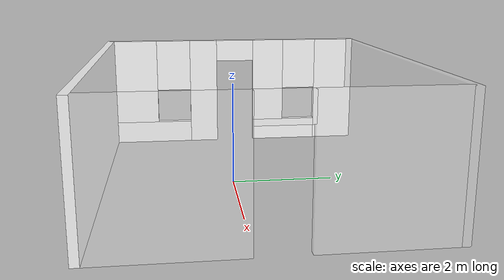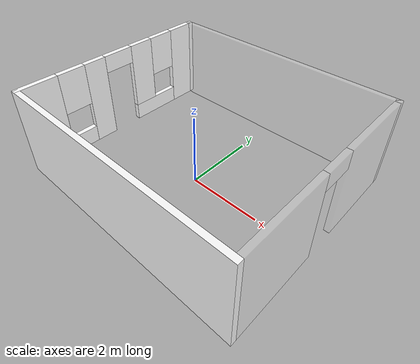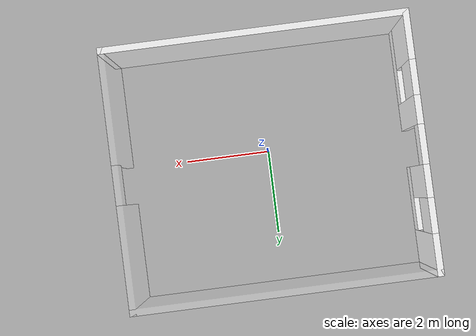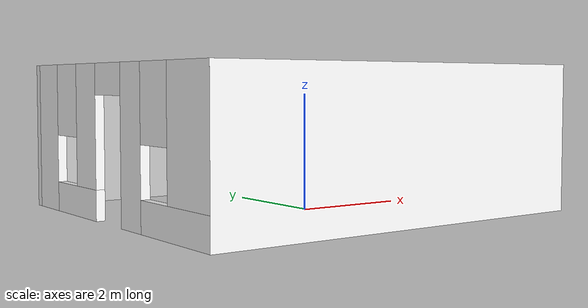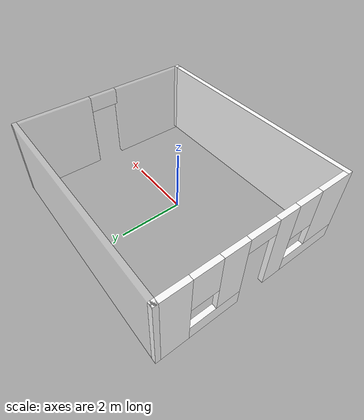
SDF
<?xml version='1.0'?>
<sdf version='1.7'>
  <model name='room'>
    <link name='Wall_11'>
      <pose>0 3.24692 0 0 -0 0</pose>
      <self_collide>0</self_collide>
      <enable_wind>0</enable_wind>
      <kinematic>0</kinematic>
      <gravity>1</gravity>
      <inertial>
        <mass>1</mass>
        <pose>0 0 0 0 -0 0</pose>
        <inertia>
          <ixx>1</ixx>
          <ixy>0</ixy>
          <ixz>0</ixz>
          <iyy>1</iyy>
          <iyz>0</iyz>
          <izz>1</izz>
        </inertia>
      </inertial>
      <visual name='Wall_11_Visual'>
        <pose>0 0 1.25 0 -0 0</pose>
        <geometry>
          <box>
            <size>7 0.15 2.5</size>
          </box>
        </geometry>
        <material>
          <script>
            <uri>model://room/materials/scripts</uri>
            <uri>model://room/materials/textures</uri>
            <name>testing/material</name>
          </script>
          <ambient>1 1 1 1</ambient>
          <shader type='pixel'>
            <normal_map>__default__</normal_map>
          </shader>
          <diffuse>1 1 1 1</diffuse>
          <specular>0 0 0 1</specular>
          <emissive>0 0 0 1</emissive>
        </material>
        <meta>
          <layer>0</layer>
        </meta>
        <transparency>0.7</transparency>
        <cast_shadows>1</cast_shadows>
      </visual>
      <collision name='Wall_11_Collision'>
        <laser_retro>0</laser_retro>
        <max_contacts>10</max_contacts>
        <pose>0 0 1.25 0 -0 0</pose>
        <geometry>
          <box>
            <size>7 0.15 2.5</size>
          </box>
        </geometry>
        <surface>
          <friction>
            <ode>
              <mu>1</mu>
              <mu2>1</mu2>
              <fdir1>0 0 0</fdir1>
              <slip1>0</slip1>
              <slip2>0</slip2>
            </ode>
            <torsional>
              <coefficient>1</coefficient>
              <patch_radius>0</patch_radius>
              <surface_radius>0</surface_radius>
              <use_patch_radius>1</use_patch_radius>
              <ode>
                <slip>0</slip>
              </ode>
            </torsional>
          </friction>
          <bounce>
            <restitution_coefficient>0</restitution_coefficient>
            <threshold>1e+06</threshold>
          </bounce>
          <contact>
            <collide_without_contact>0</collide_without_contact>
            <collide_without_contact_bitmask>1</collide_without_contact_bitmask>
            <collide_bitmask>1</collide_bitmask>
            <ode>
              <soft_cfm>0</soft_cfm>
              <soft_erp>0.2</soft_erp>
              <kp>1e+13</kp>
              <kd>1</kd>
              <max_vel>0.01</max_vel>
              <min_depth>0</min_depth>
            </ode>
            <bullet>
              <split_impulse>1</split_impulse>
              <split_impulse_penetration_threshold>-0.01</split_impulse_penetration_threshold>
              <soft_cfm>0</soft_cfm>
              <soft_erp>0.2</soft_erp>
              <kp>1e+13</kp>
              <kd>1</kd>
            </bullet>
          </contact>
        </surface>
      </collision>
    </link>
    <link name='Wall_5'>
      <pose>-3.425 0.321923 0 0 0 -1.5708</pose>
      <self_collide>0</self_collide>
      <enable_wind>0</enable_wind>
      <kinematic>0</kinematic>
      <visual name='Wall_5_Visual_0'>
        <pose>-2.52329 0 1.25 0 -0 0</pose>
        <geometry>
          <box>
            <size>0.953415 0.15 2.5</size>
          </box>
        </geometry>
        <material>
          <script>
            <uri>model://room/materials/scripts</uri>
            <uri>model://room/materials/textures</uri>
            <name>testing/material</name>
          </script>
          <ambient>1 1 1 1</ambient>
          <shader type='pixel'/>
        </material>
        <meta>
          <layer>0</layer>
        </meta>
        <transparency>0</transparency>
        <cast_shadows>1</cast_shadows>
      </visual>
      <visual name='Wall_5_Visual_1'>
        <pose>0.726172 0 1.25 0 -0 0</pose>
        <geometry>
          <box>
            <size>0.653489 0.15 2.5</size>
          </box>
        </geometry>
        <material>
          <script>
            <uri>model://room/materials/scripts</uri>
            <uri>model://room/materials/textures</uri>
            <name>testing/material</name>
          </script>
          <ambient>1 1 1 1</ambient>
          <shader type='pixel'/>
        </material>
        <meta>
          <layer>0</layer>
        </meta>
        <transparency>0</transparency>
        <cast_shadows>1</cast_shadows>
      </visual>
      <visual name='Wall_5_Visual_2'>
        <pose>-1.27358 0 0.25 0 -0 0</pose>
        <geometry>
          <box>
            <size>1.54601 0.15 0.5</size>
          </box>
        </geometry>
        <material>
          <script>
            <uri>model://room/materials/scripts</uri>
            <uri>model://room/materials/textures</uri>
            <name>testing/material</name>
          </script>
          <ambient>1 1 1 1</ambient>
          <shader type='pixel'/>
        </material>
        <meta>
          <layer>0</layer>
        </meta>
        <transparency>0</transparency>
        <cast_shadows>1</cast_shadows>
      </visual>
      <visual name='Wall_5_Visual_3'>
        <pose>2.02646 0 0.25 0 -0 0</pose>
        <geometry>
          <box>
            <size>1.94708 0.15 0.5</size>
          </box>
        </geometry>
        <material>
          <script>
            <uri>model://room/materials/scripts</uri>
            <uri>model://room/materials/textures</uri>
            <name>testing/material</name>
          </script>
          <ambient>1 1 1 1</ambient>
          <shader type='pixel'/>
        </material>
        <meta>
          <layer>0</layer>
        </meta>
        <transparency>0</transparency>
        <cast_shadows>1</cast_shadows>
      </visual>
      <visual name='Wall_5_Visual_4'>
        <pose>-0.873579 0 1.5 0 -0 0</pose>
        <geometry>
          <box>
            <size>0.746012 0.15 2</size>
          </box>
        </geometry>
        <material>
          <script>
            <uri>model://room/materials/scripts</uri>
            <uri>model://room/materials/textures</uri>
            <name>testing/material</name>
          </script>
          <ambient>1 1 1 1</ambient>
          <shader type='pixel'/>
        </material>
        <meta>
          <layer>0</layer>
        </meta>
        <transparency>0</transparency>
        <cast_shadows>1</cast_shadows>
      </visual>
      <visual name='Wall_5_Visual_5'>
        <pose>-0.873579 0 1.5 0 -0 0</pose>
        <geometry>
          <box>
            <size>0.746012 0.15 2</size>
          </box>
        </geometry>
        <material>
          <script>
            <uri>model://room/materials/scripts</uri>
            <uri>model://room/materials/textures</uri>
            <name>testing/material</name>
          </script>
          <ambient>1 1 1 1</ambient>
          <shader type='pixel'/>
        </material>
        <meta>
          <layer>0</layer>
        </meta>
        <transparency>0</transparency>
        <cast_shadows>1</cast_shadows>
      </visual>
      <visual name='Wall_5_Visual_6'>
        <pose>2.42646 0 1.5 0 -0 0</pose>
        <geometry>
          <box>
            <size>1.14708 0.15 2</size>
          </box>
        </geometry>
        <material>
          <script>
            <uri>model://room/materials/scripts</uri>
            <uri>model://room/materials/textures</uri>
            <name>testing/material</name>
          </script>
          <ambient>1 1 1 1</ambient>
          <shader type='pixel'/>
        </material>
        <meta>
          <layer>0</layer>
        </meta>
        <transparency>0</transparency>
        <cast_shadows>1</cast_shadows>
      </visual>
      <visual name='Wall_5_Visual_7'>
        <pose>-1.64658 0 1.9 0 -0 0</pose>
        <geometry>
          <box>
            <size>0.8 0.15 1.2</size>
          </box>
        </geometry>
        <material>
          <script>
            <uri>model://room/materials/scripts</uri>
            <uri>model://room/materials/textures</uri>
            <name>testing/material</name>
          </script>
          <ambient>1 1 1 1</ambient>
          <shader type='pixel'/>
        </material>
        <meta>
          <layer>0</layer>
        </meta>
        <transparency>0</transparency>
        <cast_shadows>1</cast_shadows>
      </visual>
      <visual name='Wall_5_Visual_8'>
        <pose>1.45292 0 1.9 0 -0 0</pose>
        <geometry>
          <box>
            <size>0.8 0.15 1.2</size>
          </box>
        </geometry>
        <material>
          <script>
            <uri>model://room/materials/scripts</uri>
            <uri>model://room/materials/textures</uri>
            <name>testing/material</name>
          </script>
          <ambient>1 1 1 1</ambient>
          <shader type='pixel'/>
        </material>
        <meta>
          <layer>0</layer>
        </meta>
        <transparency>0</transparency>
        <cast_shadows>1</cast_shadows>
      </visual>
      <visual name='Wall_5_Visual_9'>
        <pose>-0.050573 0 2.25 0 -0 0</pose>
        <geometry>
          <box>
            <size>0.9 0.15 0.5</size>
          </box>
        </geometry>
        <material>
          <script>
            <uri>model://room/materials/scripts</uri>
            <uri>model://room/materials/textures</uri>
            <name>testing/material</name>
          </script>
          <ambient>1 1 1 1</ambient>
          <shader type='pixel'/>
        </material>
        <meta>
          <layer>0</layer>
        </meta>
        <transparency>0</transparency>
        <cast_shadows>1</cast_shadows>
      </visual>
      <visual name='Wall_5_Visual_10'>
        <pose>-0.050573 0 2.25 0 -0 0</pose>
        <geometry>
          <box>
            <size>0.9 0.15 0.5</size>
          </box>
        </geometry>
        <material>
          <script>
            <uri>model://room/materials/scripts</uri>
            <uri>model://room/materials/textures</uri>
            <name>testing/material</name>
          </script>
          <ambient>1 1 1 1</ambient>
          <shader type='pixel'/>
        </material>
        <meta>
          <layer>0</layer>
        </meta>
        <transparency>0</transparency>
        <cast_shadows>1</cast_shadows>
      </visual>
      <collision name='Wall_5_Collision_0'>
        <laser_retro>0</laser_retro>
        <max_contacts>10</max_contacts>
        <pose>-2.52329 0 1.25 0 -0 0</pose>
        <geometry>
          <box>
            <size>0.953415 0.15 2.5</size>
          </box>
        </geometry>
        <surface>
          <friction>
            <ode>
              <mu>1</mu>
              <mu2>1</mu2>
              <fdir1>0 0 0</fdir1>
              <slip1>0</slip1>
              <slip2>0</slip2>
            </ode>
            <torsional>
              <coefficient>1</coefficient>
              <patch_radius>0</patch_radius>
              <surface_radius>0</surface_radius>
              <use_patch_radius>1</use_patch_radius>
              <ode>
                <slip>0</slip>
              </ode>
            </torsional>
          </friction>
          <bounce>
            <restitution_coefficient>0</restitution_coefficient>
            <threshold>1e+06</threshold>
          </bounce>
          <contact>
            <collide_without_contact>0</collide_without_contact>
            <collide_without_contact_bitmask>1</collide_without_contact_bitmask>
            <collide_bitmask>1</collide_bitmask>
            <ode>
              <soft_cfm>0</soft_cfm>
              <soft_erp>0.2</soft_erp>
              <kp>1e+13</kp>
              <kd>1</kd>
              <max_vel>0.01</max_vel>
              <min_depth>0</min_depth>
            </ode>
            <bullet>
              <split_impulse>1</split_impulse>
              <split_impulse_penetration_threshold>-0.01</split_impulse_penetration_threshold>
              <soft_cfm>0</soft_cfm>
              <soft_erp>0.2</soft_erp>
              <kp>1e+13</kp>
              <kd>1</kd>
            </bullet>
          </contact>
        </surface>
      </collision>
      <collision name='Wall_5_Collision_1'>
        <laser_retro>0</laser_retro>
        <max_contacts>10</max_contacts>
        <pose>0.726172 0 1.25 0 -0 0</pose>
        <geometry>
          <box>
            <size>0.653489 0.15 2.5</size>
          </box>
        </geometry>
        <surface>
          <friction>
            <ode>
              <mu>1</mu>
              <mu2>1</mu2>
              <fdir1>0 0 0</fdir1>
              <slip1>0</slip1>
              <slip2>0</slip2>
            </ode>
            <torsional>
              <coefficient>1</coefficient>
              <patch_radius>0</patch_radius>
              <surface_radius>0</surface_radius>
              <use_patch_radius>1</use_patch_radius>
              <ode>
                <slip>0</slip>
              </ode>
            </torsional>
          </friction>
          <bounce>
            <restitution_coefficient>0</restitution_coefficient>
            <threshold>1e+06</threshold>
          </bounce>
          <contact>
            <collide_without_contact>0</collide_without_contact>
            <collide_without_contact_bitmask>1</collide_without_contact_bitmask>
            <collide_bitmask>1</collide_bitmask>
            <ode>
              <soft_cfm>0</soft_cfm>
              <soft_erp>0.2</soft_erp>
              <kp>1e+13</kp>
              <kd>1</kd>
              <max_vel>0.01</max_vel>
              <min_depth>0</min_depth>
            </ode>
            <bullet>
              <split_impulse>1</split_impulse>
              <split_impulse_penetration_threshold>-0.01</split_impulse_penetration_threshold>
              <soft_cfm>0</soft_cfm>
              <soft_erp>0.2</soft_erp>
              <kp>1e+13</kp>
              <kd>1</kd>
            </bullet>
          </contact>
        </surface>
      </collision>
      <collision name='Wall_5_Collision_2'>
        <laser_retro>0</laser_retro>
        <max_contacts>10</max_contacts>
        <pose>-1.27358 0 0.25 0 -0 0</pose>
        <geometry>
          <box>
            <size>1.54601 0.15 0.5</size>
          </box>
        </geometry>
        <surface>
          <friction>
            <ode>
              <mu>1</mu>
              <mu2>1</mu2>
              <fdir1>0 0 0</fdir1>
              <slip1>0</slip1>
              <slip2>0</slip2>
            </ode>
            <torsional>
              <coefficient>1</coefficient>
              <patch_radius>0</patch_radius>
              <surface_radius>0</surface_radius>
              <use_patch_radius>1</use_patch_radius>
              <ode>
                <slip>0</slip>
              </ode>
            </torsional>
          </friction>
          <bounce>
            <restitution_coefficient>0</restitution_coefficient>
            <threshold>1e+06</threshold>
          </bounce>
          <contact>
            <collide_without_contact>0</collide_without_contact>
            <collide_without_contact_bitmask>1</collide_without_contact_bitmask>
            <collide_bitmask>1</collide_bitmask>
            <ode>
              <soft_cfm>0</soft_cfm>
              <soft_erp>0.2</soft_erp>
              <kp>1e+13</kp>
              <kd>1</kd>
              <max_vel>0.01</max_vel>
              <min_depth>0</min_depth>
            </ode>
            <bullet>
              <split_impulse>1</split_impulse>
              <split_impulse_penetration_threshold>-0.01</split_impulse_penetration_threshold>
              <soft_cfm>0</soft_cfm>
              <soft_erp>0.2</soft_erp>
              <kp>1e+13</kp>
              <kd>1</kd>
            </bullet>
          </contact>
        </surface>
      </collision>
      <collision name='Wall_5_Collision_3'>
        <laser_retro>0</laser_retro>
        <max_contacts>10</max_contacts>
        <pose>2.02646 0 0.25 0 -0 0</pose>
        <geometry>
          <box>
            <size>1.94708 0.15 0.5</size>
          </box>
        </geometry>
        <surface>
          <friction>
            <ode>
              <mu>1</mu>
              <mu2>1</mu2>
              <fdir1>0 0 0</fdir1>
              <slip1>0</slip1>
              <slip2>0</slip2>
            </ode>
            <torsional>
              <coefficient>1</coefficient>
              <patch_radius>0</patch_radius>
              <surface_radius>0</surface_radius>
              <use_patch_radius>1</use_patch_radius>
              <ode>
                <slip>0</slip>
              </ode>
            </torsional>
          </friction>
          <bounce>
            <restitution_coefficient>0</restitution_coefficient>
            <threshold>1e+06</threshold>
          </bounce>
          <contact>
            <collide_without_contact>0</collide_without_contact>
            <collide_without_contact_bitmask>1</collide_without_contact_bitmask>
            <collide_bitmask>1</collide_bitmask>
            <ode>
              <soft_cfm>0</soft_cfm>
              <soft_erp>0.2</soft_erp>
              <kp>1e+13</kp>
              <kd>1</kd>
              <max_vel>0.01</max_vel>
              <min_depth>0</min_depth>
            </ode>
            <bullet>
              <split_impulse>1</split_impulse>
              <split_impulse_penetration_threshold>-0.01</split_impulse_penetration_threshold>
              <soft_cfm>0</soft_cfm>
              <soft_erp>0.2</soft_erp>
              <kp>1e+13</kp>
              <kd>1</kd>
            </bullet>
          </contact>
        </surface>
      </collision>
      <collision name='Wall_5_Collision_4'>
        <laser_retro>0</laser_retro>
        <max_contacts>10</max_contacts>
        <pose>-0.873579 0 1.5 0 -0 0</pose>
        <geometry>
          <box>
            <size>0.746012 0.15 2</size>
          </box>
        </geometry>
        <surface>
          <friction>
            <ode>
              <mu>1</mu>
              <mu2>1</mu2>
              <fdir1>0 0 0</fdir1>
              <slip1>0</slip1>
              <slip2>0</slip2>
            </ode>
            <torsional>
              <coefficient>1</coefficient>
              <patch_radius>0</patch_radius>
              <surface_radius>0</surface_radius>
              <use_patch_radius>1</use_patch_radius>
              <ode>
                <slip>0</slip>
              </ode>
            </torsional>
          </friction>
          <bounce>
            <restitution_coefficient>0</restitution_coefficient>
            <threshold>1e+06</threshold>
          </bounce>
          <contact>
            <collide_without_contact>0</collide_without_contact>
            <collide_without_contact_bitmask>1</collide_without_contact_bitmask>
            <collide_bitmask>1</collide_bitmask>
            <ode>
              <soft_cfm>0</soft_cfm>
              <soft_erp>0.2</soft_erp>
              <kp>1e+13</kp>
              <kd>1</kd>
              <max_vel>0.01</max_vel>
              <min_depth>0</min_depth>
            </ode>
            <bullet>
              <split_impulse>1</split_impulse>
              <split_impulse_penetration_threshold>-0.01</split_impulse_penetration_threshold>
              <soft_cfm>0</soft_cfm>
              <soft_erp>0.2</soft_erp>
              <kp>1e+13</kp>
              <kd>1</kd>
            </bullet>
          </contact>
        </surface>
      </collision>
      <collision name='Wall_5_Collision_5'>
        <laser_retro>0</laser_retro>
        <max_contacts>10</max_contacts>
        <pose>-0.873579 0 1.5 0 -0 0</pose>
        <geometry>
          <box>
            <size>0.746012 0.15 2</size>
          </box>
        </geometry>
        <surface>
          <friction>
            <ode>
              <mu>1</mu>
              <mu2>1</mu2>
              <fdir1>0 0 0</fdir1>
              <slip1>0</slip1>
              <slip2>0</slip2>
            </ode>
            <torsional>
              <coefficient>1</coefficient>
              <patch_radius>0</patch_radius>
              <surface_radius>0</surface_radius>
              <use_patch_radius>1</use_patch_radius>
              <ode>
                <slip>0</slip>
              </ode>
            </torsional>
          </friction>
          <bounce>
            <restitution_coefficient>0</restitution_coefficient>
            <threshold>1e+06</threshold>
          </bounce>
          <contact>
            <collide_without_contact>0</collide_without_contact>
            <collide_without_contact_bitmask>1</collide_without_contact_bitmask>
            <collide_bitmask>1</collide_bitmask>
            <ode>
              <soft_cfm>0</soft_cfm>
              <soft_erp>0.2</soft_erp>
              <kp>1e+13</kp>
              <kd>1</kd>
              <max_vel>0.01</max_vel>
              <min_depth>0</min_depth>
            </ode>
            <bullet>
              <split_impulse>1</split_impulse>
              <split_impulse_penetration_threshold>-0.01</split_impulse_penetration_threshold>
              <soft_cfm>0</soft_cfm>
              <soft_erp>0.2</soft_erp>
              <kp>1e+13</kp>
              <kd>1</kd>
            </bullet>
          </contact>
        </surface>
      </collision>
      <collision name='Wall_5_Collision_6'>
        <laser_retro>0</laser_retro>
        <max_contacts>10</max_contacts>
        <pose>2.42646 0 1.5 0 -0 0</pose>
        <geometry>
          <box>
            <size>1.14708 0.15 2</size>
          </box>
        </geometry>
        <surface>
          <friction>
            <ode>
              <mu>1</mu>
              <mu2>1</mu2>
              <fdir1>0 0 0</fdir1>
              <slip1>0</slip1>
              <slip2>0</slip2>
            </ode>
            <torsional>
              <coefficient>1</coefficient>
              <patch_radius>0</patch_radius>
              <surface_radius>0</surface_radius>
              <use_patch_radius>1</use_patch_radius>
              <ode>
                <slip>0</slip>
              </ode>
            </torsional>
          </friction>
          <bounce>
            <restitution_coefficient>0</restitution_coefficient>
            <threshold>1e+06</threshold>
          </bounce>
          <contact>
            <collide_without_contact>0</collide_without_contact>
            <collide_without_contact_bitmask>1</collide_without_contact_bitmask>
            <collide_bitmask>1</collide_bitmask>
            <ode>
              <soft_cfm>0</soft_cfm>
              <soft_erp>0.2</soft_erp>
              <kp>1e+13</kp>
              <kd>1</kd>
              <max_vel>0.01</max_vel>
              <min_depth>0</min_depth>
            </ode>
            <bullet>
              <split_impulse>1</split_impulse>
              <split_impulse_penetration_threshold>-0.01</split_impulse_penetration_threshold>
              <soft_cfm>0</soft_cfm>
              <soft_erp>0.2</soft_erp>
              <kp>1e+13</kp>
              <kd>1</kd>
            </bullet>
          </contact>
        </surface>
      </collision>
      <collision name='Wall_5_Collision_7'>
        <laser_retro>0</laser_retro>
        <max_contacts>10</max_contacts>
        <pose>-1.64658 0 1.9 0 -0 0</pose>
        <geometry>
          <box>
            <size>0.8 0.15 1.2</size>
          </box>
        </geometry>
        <surface>
          <friction>
            <ode>
              <mu>1</mu>
              <mu2>1</mu2>
              <fdir1>0 0 0</fdir1>
              <slip1>0</slip1>
              <slip2>0</slip2>
            </ode>
            <torsional>
              <coefficient>1</coefficient>
              <patch_radius>0</patch_radius>
              <surface_radius>0</surface_radius>
              <use_patch_radius>1</use_patch_radius>
              <ode>
                <slip>0</slip>
              </ode>
            </torsional>
          </friction>
          <bounce>
            <restitution_coefficient>0</restitution_coefficient>
            <threshold>1e+06</threshold>
          </bounce>
          <contact>
            <collide_without_contact>0</collide_without_contact>
            <collide_without_contact_bitmask>1</collide_without_contact_bitmask>
            <collide_bitmask>1</collide_bitmask>
            <ode>
              <soft_cfm>0</soft_cfm>
              <soft_erp>0.2</soft_erp>
              <kp>1e+13</kp>
              <kd>1</kd>
              <max_vel>0.01</max_vel>
              <min_depth>0</min_depth>
            </ode>
            <bullet>
              <split_impulse>1</split_impulse>
              <split_impulse_penetration_threshold>-0.01</split_impulse_penetration_threshold>
              <soft_cfm>0</soft_cfm>
              <soft_erp>0.2</soft_erp>
              <kp>1e+13</kp>
              <kd>1</kd>
            </bullet>
          </contact>
        </surface>
      </collision>
      <collision name='Wall_5_Collision_8'>
        <laser_retro>0</laser_retro>
        <max_contacts>10</max_contacts>
        <pose>1.45292 0 1.9 0 -0 0</pose>
        <geometry>
          <box>
            <size>0.8 0.15 1.2</size>
          </box>
        </geometry>
        <surface>
          <friction>
            <ode>
              <mu>1</mu>
              <mu2>1</mu2>
              <fdir1>0 0 0</fdir1>
              <slip1>0</slip1>
              <slip2>0</slip2>
            </ode>
            <torsional>
              <coefficient>1</coefficient>
              <patch_radius>0</patch_radius>
              <surface_radius>0</surface_radius>
              <use_patch_radius>1</use_patch_radius>
              <ode>
                <slip>0</slip>
              </ode>
            </torsional>
          </friction>
          <bounce>
            <restitution_coefficient>0</restitution_coefficient>
            <threshold>1e+06</threshold>
          </bounce>
          <contact>
            <collide_without_contact>0</collide_without_contact>
            <collide_without_contact_bitmask>1</collide_without_contact_bitmask>
            <collide_bitmask>1</collide_bitmask>
            <ode>
              <soft_cfm>0</soft_cfm>
              <soft_erp>0.2</soft_erp>
              <kp>1e+13</kp>
              <kd>1</kd>
              <max_vel>0.01</max_vel>
              <min_depth>0</min_depth>
            </ode>
            <bullet>
              <split_impulse>1</split_impulse>
              <split_impulse_penetration_threshold>-0.01</split_impulse_penetration_threshold>
              <soft_cfm>0</soft_cfm>
              <soft_erp>0.2</soft_erp>
              <kp>1e+13</kp>
              <kd>1</kd>
            </bullet>
          </contact>
        </surface>
      </collision>
      <collision name='Wall_5_Collision_9'>
        <laser_retro>0</laser_retro>
        <max_contacts>10</max_contacts>
        <pose>-0.050573 0 2.25 0 -0 0</pose>
        <geometry>
          <box>
            <size>0.9 0.15 0.5</size>
          </box>
        </geometry>
        <surface>
          <friction>
            <ode>
              <mu>1</mu>
              <mu2>1</mu2>
              <fdir1>0 0 0</fdir1>
              <slip1>0</slip1>
              <slip2>0</slip2>
            </ode>
            <torsional>
              <coefficient>1</coefficient>
              <patch_radius>0</patch_radius>
              <surface_radius>0</surface_radius>
              <use_patch_radius>1</use_patch_radius>
              <ode>
                <slip>0</slip>
              </ode>
            </torsional>
          </friction>
          <bounce>
            <restitution_coefficient>0</restitution_coefficient>
            <threshold>1e+06</threshold>
          </bounce>
          <contact>
            <collide_without_contact>0</collide_without_contact>
            <collide_without_contact_bitmask>1</collide_without_contact_bitmask>
            <collide_bitmask>1</collide_bitmask>
            <ode>
              <soft_cfm>0</soft_cfm>
              <soft_erp>0.2</soft_erp>
              <kp>1e+13</kp>
              <kd>1</kd>
              <max_vel>0.01</max_vel>
              <min_depth>0</min_depth>
            </ode>
            <bullet>
              <split_impulse>1</split_impulse>
              <split_impulse_penetration_threshold>-0.01</split_impulse_penetration_threshold>
              <soft_cfm>0</soft_cfm>
              <soft_erp>0.2</soft_erp>
              <kp>1e+13</kp>
              <kd>1</kd>
            </bullet>
          </contact>
        </surface>
      </collision>
      <collision name='Wall_5_Collision_10'>
        <laser_retro>0</laser_retro>
        <max_contacts>10</max_contacts>
        <pose>-0.050573 0 2.25 0 -0 0</pose>
        <geometry>
          <box>
            <size>0.9 0.15 0.5</size>
          </box>
        </geometry>
        <surface>
          <friction>
            <ode>
              <mu>1</mu>
              <mu2>1</mu2>
              <fdir1>0 0 0</fdir1>
              <slip1>0</slip1>
              <slip2>0</slip2>
            </ode>
            <torsional>
              <coefficient>1</coefficient>
              <patch_radius>0</patch_radius>
              <surface_radius>0</surface_radius>
              <use_patch_radius>1</use_patch_radius>
              <ode>
                <slip>0</slip>
              </ode>
            </torsional>
          </friction>
          <bounce>
            <restitution_coefficient>0</restitution_coefficient>
            <threshold>1e+06</threshold>
          </bounce>
          <contact>
            <collide_without_contact>0</collide_without_contact>
            <collide_without_contact_bitmask>1</collide_without_contact_bitmask>
            <collide_bitmask>1</collide_bitmask>
            <ode>
              <soft_cfm>0</soft_cfm>
              <soft_erp>0.2</soft_erp>
              <kp>1e+13</kp>
              <kd>1</kd>
              <max_vel>0.01</max_vel>
              <min_depth>0</min_depth>
            </ode>
            <bullet>
              <split_impulse>1</split_impulse>
              <split_impulse_penetration_threshold>-0.01</split_impulse_penetration_threshold>
              <soft_cfm>0</soft_cfm>
              <soft_erp>0.2</soft_erp>
              <kp>1e+13</kp>
              <kd>1</kd>
            </bullet>
          </contact>
        </surface>
      </collision>
    </link>
    <link name='Wall_7'>
      <pose>0 -2.60308 0 0 -0 0</pose>
      <self_collide>0</self_collide>
      <enable_wind>0</enable_wind>
      <kinematic>0</kinematic>
      <visual name='Wall_7_Visual'>
        <pose>0 0 1.25 0 -0 0</pose>
        <geometry>
          <box>
            <size>7 0.15 2.5</size>
          </box>
        </geometry>
        <material>
          <script>
            <uri>model://room/materials/scripts</uri>
            <uri>model://room/materials/textures</uri>
            <name>testing/material</name>
          </script>
          <ambient>1 1 1 1</ambient>
          <shader type='pixel'/>
        </material>
        <meta>
          <layer>0</layer>
        </meta>
        <transparency>0</transparency>
        <cast_shadows>1</cast_shadows>
      </visual>
      <collision name='Wall_7_Collision'>
        <laser_retro>0</laser_retro>
        <max_contacts>10</max_contacts>
        <pose>0 0 1.25 0 -0 0</pose>
        <geometry>
          <box>
            <size>7 0.15 2.5</size>
          </box>
        </geometry>
        <surface>
          <friction>
            <ode>
              <mu>1</mu>
              <mu2>1</mu2>
              <fdir1>0 0 0</fdir1>
              <slip1>0</slip1>
              <slip2>0</slip2>
            </ode>
            <torsional>
              <coefficient>1</coefficient>
              <patch_radius>0</patch_radius>
              <surface_radius>0</surface_radius>
              <use_patch_radius>1</use_patch_radius>
              <ode>
                <slip>0</slip>
              </ode>
            </torsional>
          </friction>
          <bounce>
            <restitution_coefficient>0</restitution_coefficient>
            <threshold>1e+06</threshold>
          </bounce>
          <contact>
            <collide_without_contact>0</collide_without_contact>
            <collide_without_contact_bitmask>1</collide_without_contact_bitmask>
            <collide_bitmask>1</collide_bitmask>
            <ode>
              <soft_cfm>0</soft_cfm>
              <soft_erp>0.2</soft_erp>
              <kp>1e+13</kp>
              <kd>1</kd>
              <max_vel>0.01</max_vel>
              <min_depth>0</min_depth>
            </ode>
            <bullet>
              <split_impulse>1</split_impulse>
              <split_impulse_penetration_threshold>-0.01</split_impulse_penetration_threshold>
              <soft_cfm>0</soft_cfm>
              <soft_erp>0.2</soft_erp>
              <kp>1e+13</kp>
              <kd>1</kd>
            </bullet>
          </contact>
        </surface>
      </collision>
    </link>
    <link name='Wall_9'>
      <pose>3.425 0.321923 0 0 -0 1.5708</pose>
      <self_collide>0</self_collide>
      <enable_wind>0</enable_wind>
      <kinematic>0</kinematic>
      <gravity>1</gravity>
      <inertial>
        <mass>1</mass>
        <pose>0 0 0 0 -0 0</pose>
        <inertia>
          <ixx>1</ixx>
          <ixy>0</ixy>
          <ixz>0</ixz>
          <iyy>1</iyy>
          <iyz>0</iyz>
          <izz>1</izz>
        </inertia>
      </inertial>
      <visual name='Wall_9_Visual_0'>
        <pose>-1.67971 0 1.25 0 -0 0</pose>
        <geometry>
          <box>
            <size>2.64057 0.15 2.5</size>
          </box>
        </geometry>
        <material>
          <script>
            <uri>model://room/materials/scripts</uri>
            <uri>model://room/materials/textures</uri>
            <name>testing/material</name>
          </script>
          <ambient>1 1 1 1</ambient>
          <shader type='pixel'>
            <normal_map>__default__</normal_map>
          </shader>
          <diffuse>1 1 1 1</diffuse>
          <specular>0 0 0 1</specular>
          <emissive>0 0 0 1</emissive>
        </material>
        <meta>
          <layer>0</layer>
        </meta>
        <transparency>0.7</transparency>
        <cast_shadows>1</cast_shadows>
      </visual>
      <visual name='Wall_9_Visual_1'>
        <pose>1.77029 0 1.25 0 -0 0</pose>
        <geometry>
          <box>
            <size>2.45943 0.15 2.5</size>
          </box>
        </geometry>
        <material>
          <script>
            <uri>model://room/materials/scripts</uri>
            <uri>model://room/materials/textures</uri>
            <name>testing/material</name>
          </script>
          <ambient>1 1 1 1</ambient>
          <shader type='pixel'>
            <normal_map>__default__</normal_map>
          </shader>
          <diffuse>1 1 1 1</diffuse>
          <specular>0 0 0 1</specular>
          <emissive>0 0 0 1</emissive>
        </material>
        <meta>
          <layer>0</layer>
        </meta>
        <transparency>0.7</transparency>
        <cast_shadows>1</cast_shadows>
      </visual>
      <visual name='Wall_9_Visual_2'>
        <pose>0.090573 0 2.25 0 -0 0</pose>
        <geometry>
          <box>
            <size>0.9 0.15 0.5</size>
          </box>
        </geometry>
        <material>
          <script>
            <uri>model://room/materials/scripts</uri>
            <uri>model://room/materials/textures</uri>
            <name>testing/material</name>
          </script>
          <ambient>1 1 1 1</ambient>
          <shader type='pixel'>
            <normal_map>__default__</normal_map>
          </shader>
          <diffuse>1 1 1 1</diffuse>
          <specular>0 0 0 1</specular>
          <emissive>0 0 0 1</emissive>
        </material>
        <meta>
          <layer>0</layer>
        </meta>
        <transparency>0.7</transparency>
        <cast_shadows>1</cast_shadows>
      </visual>
      <collision name='Wall_9_Collision_0'>
        <laser_retro>0</laser_retro>
        <max_contacts>10</max_contacts>
        <pose>-1.67971 0 1.25 0 -0 0</pose>
        <geometry>
          <box>
            <size>2.64057 0.15 2.5</size>
          </box>
        </geometry>
        <surface>
          <friction>
            <ode>
              <mu>1</mu>
              <mu2>1</mu2>
              <fdir1>0 0 0</fdir1>
              <slip1>0</slip1>
              <slip2>0</slip2>
            </ode>
            <torsional>
              <coefficient>1</coefficient>
              <patch_radius>0</patch_radius>
              <surface_radius>0</surface_radius>
              <use_patch_radius>1</use_patch_radius>
              <ode>
                <slip>0</slip>
              </ode>
            </torsional>
          </friction>
          <bounce>
            <restitution_coefficient>0</restitution_coefficient>
            <threshold>1e+06</threshold>
          </bounce>
          <contact>
            <collide_without_contact>0</collide_without_contact>
            <collide_without_contact_bitmask>1</collide_without_contact_bitmask>
            <collide_bitmask>1</collide_bitmask>
            <ode>
              <soft_cfm>0</soft_cfm>
              <soft_erp>0.2</soft_erp>
              <kp>1e+13</kp>
              <kd>1</kd>
              <max_vel>0.01</max_vel>
              <min_depth>0</min_depth>
            </ode>
            <bullet>
              <split_impulse>1</split_impulse>
              <split_impulse_penetration_threshold>-0.01</split_impulse_penetration_threshold>
              <soft_cfm>0</soft_cfm>
              <soft_erp>0.2</soft_erp>
              <kp>1e+13</kp>
              <kd>1</kd>
            </bullet>
          </contact>
        </surface>
      </collision>
      <collision name='Wall_9_Collision_1'>
        <laser_retro>0</laser_retro>
        <max_contacts>10</max_contacts>
        <pose>1.77029 0 1.25 0 -0 0</pose>
        <geometry>
          <box>
            <size>2.45943 0.15 2.5</size>
          </box>
        </geometry>
        <surface>
          <friction>
            <ode>
              <mu>1</mu>
              <mu2>1</mu2>
              <fdir1>0 0 0</fdir1>
              <slip1>0</slip1>
              <slip2>0</slip2>
            </ode>
            <torsional>
              <coefficient>1</coefficient>
              <patch_radius>0</patch_radius>
              <surface_radius>0</surface_radius>
              <use_patch_radius>1</use_patch_radius>
              <ode>
                <slip>0</slip>
              </ode>
            </torsional>
          </friction>
          <bounce>
            <restitution_coefficient>0</restitution_coefficient>
            <threshold>1e+06</threshold>
          </bounce>
          <contact>
            <collide_without_contact>0</collide_without_contact>
            <collide_without_contact_bitmask>1</collide_without_contact_bitmask>
            <collide_bitmask>1</collide_bitmask>
            <ode>
              <soft_cfm>0</soft_cfm>
              <soft_erp>0.2</soft_erp>
              <kp>1e+13</kp>
              <kd>1</kd>
              <max_vel>0.01</max_vel>
              <min_depth>0</min_depth>
            </ode>
            <bullet>
              <split_impulse>1</split_impulse>
              <split_impulse_penetration_threshold>-0.01</split_impulse_penetration_threshold>
              <soft_cfm>0</soft_cfm>
              <soft_erp>0.2</soft_erp>
              <kp>1e+13</kp>
              <kd>1</kd>
            </bullet>
          </contact>
        </surface>
      </collision>
      <collision name='Wall_9_Collision_2'>
        <laser_retro>0</laser_retro>
        <max_contacts>10</max_contacts>
        <pose>0.090573 0 2.25 0 -0 0</pose>
        <geometry>
          <box>
            <size>0.9 0.15 0.5</size>
          </box>
        </geometry>
        <surface>
          <friction>
            <ode>
              <mu>1</mu>
              <mu2>1</mu2>
              <fdir1>0 0 0</fdir1>
              <slip1>0</slip1>
              <slip2>0</slip2>
            </ode>
            <torsional>
              <coefficient>1</coefficient>
              <patch_radius>0</patch_radius>
              <surface_radius>0</surface_radius>
              <use_patch_radius>1</use_patch_radius>
              <ode>
                <slip>0</slip>
              </ode>
            </torsional>
          </friction>
          <bounce>
            <restitution_coefficient>0</restitution_coefficient>
            <threshold>1e+06</threshold>
          </bounce>
          <contact>
            <collide_without_contact>0</collide_without_contact>
            <collide_without_contact_bitmask>1</collide_without_contact_bitmask>
            <collide_bitmask>1</collide_bitmask>
            <ode>
              <soft_cfm>0</soft_cfm>
              <soft_erp>0.2</soft_erp>
              <kp>1e+13</kp>
              <kd>1</kd>
              <max_vel>0.01</max_vel>
              <min_depth>0</min_depth>
            </ode>
            <bullet>
              <split_impulse>1</split_impulse>
              <split_impulse_penetration_threshold>-0.01</split_impulse_penetration_threshold>
              <soft_cfm>0</soft_cfm>
              <soft_erp>0.2</soft_erp>
              <kp>1e+13</kp>
              <kd>1</kd>
            </bullet>
          </contact>
        </surface>
      </collision>
    </link>
    <static>1</static>
    <allow_auto_disable>1</allow_auto_disable>
  </model>
</sdf>
